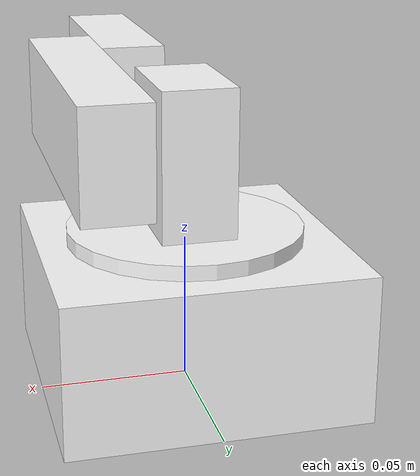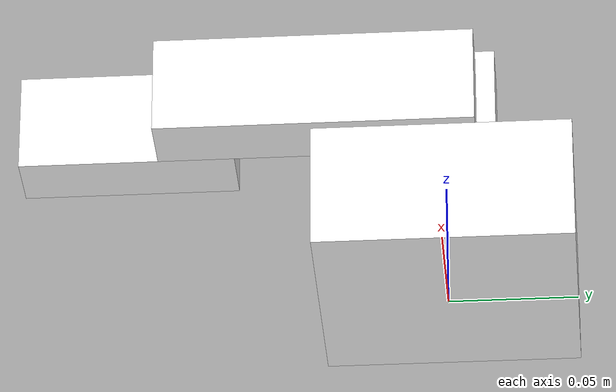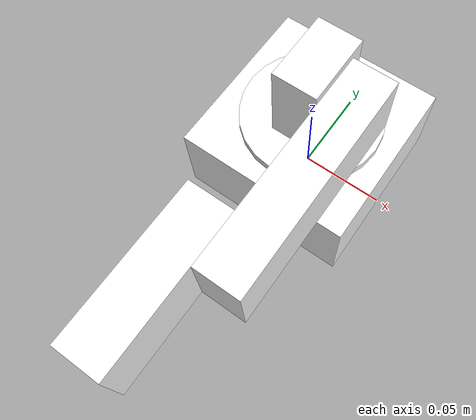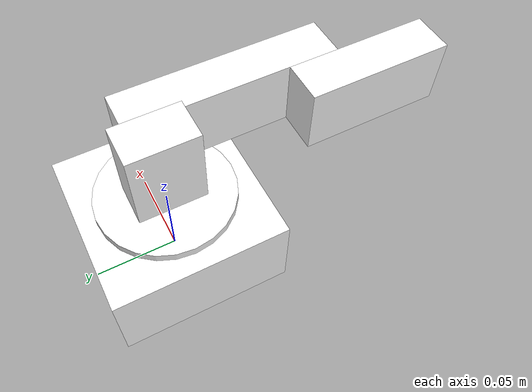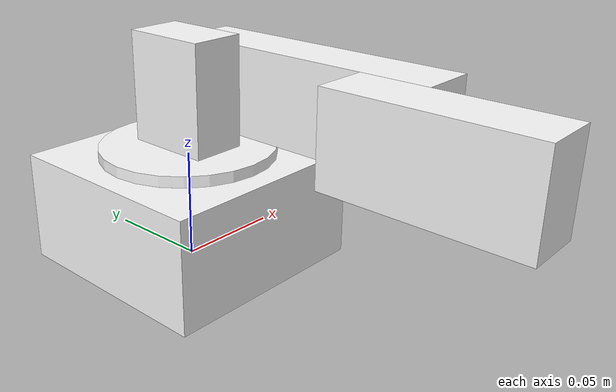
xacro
<?xml version="1.0"?>
<robot xmlns:xacro="http://www.ros.org/wiki/xacro" name="robot">

    <xacro:include filename="include.xacro" />

    <link name="world" />

    <link name="base_link">
        <visual>
            <origin rpy="0 0 0" xyz="0 0 0.025" />
            <geometry>
                <box size="0.1 0.1 0.05" />
            </geometry>
            <material name="white" />
        </visual>
        <collision>
            <origin rpy="0 0 0" xyz="0 0 0.025" />
            <geometry>
                <box size="0.1 0.1 0.05" />
            </geometry>
        </collision>
        <xacro:inertial_box mass="0.5" x="0.1" y="0.1" z="0.05">
            <origin rpy="0 0 0" xyz="0 0 0" />
        </xacro:inertial_box>
    </link>

    <joint name="base_joint" type="fixed">
        <origin xyz="0 0 0" rpy="0 0 0" />
        <parent link="world" />
        <child link="base_link" />
    </joint>

    <link name="base_plate">
        <visual>
            <geometry>
                <cylinder radius="0.04" length="0.005" />
            </geometry>
            <origin rpy="0 0 0" xyz="0 0 0.0025" />
            <material name="white" />
        </visual>
        <collision>
            <geometry>
                <cylinder radius="0.04" length="0.005" />
            </geometry>
            <origin rpy="0 0 0" xyz="0 0 0.0025" />
        </collision>
        <xacro:inertial_cylinder mass="0.5" length="0.005" radius="0.04">
            <origin rpy="0 0 0" xyz="0 0 0" />
        </xacro:inertial_cylinder>
    </link>

    <joint name="base_plate_to_base_link" type="revolute">
        <axis xyz="0 0 1" />
        <limit effort="1000" lower="0" upper="3.1415" velocity="1" />
        <origin xyz="0 0 0.05" />
        <parent link="base_link" />
        <child link="base_plate" />
    </joint>

    <link name="base_plate_attachment">
        <visual>
            <geometry>
                <box size="0.025 0.04 0.05" />
            </geometry>
            <origin rpy="0 0 0" xyz="0 0 0.025" />
            <material name="white" />
        </visual>
        <collision>
            <geometry>
                <box size="0.025 0.04 0.05" />
            </geometry>
            <origin rpy="0 0 0" xyz="0 0 0.025" />
        </collision>
        <xacro:inertial_box mass="0.5" x="0.025" y="0.04" z="0.05">
            <origin rpy="0 0 0" xyz="0 0 0" />
        </xacro:inertial_box>
    </link>

    <joint name="base_plate_to_attachment" type="fixed">
        <origin xyz="0 0 0.005" />
        <parent link="base_plate" />
        <child link="base_plate_attachment" />
    </joint>

    <link name="mid_arm">
        <visual>
            <geometry>
                <box size="0.025 0.04 0.125" />
            </geometry>
            <origin rpy="-1.5707963 0 0" xyz="0 -0.05 0" />
            <material name="white" />
        </visual>
        <collision>
            <geometry>
                <box size="0.025 0.04 0.125" />
            </geometry>
            <origin rpy="-1.5707963 0 0" xyz="0 -0.05 0" />
        </collision>
        <xacro:inertial_box mass="0.5" x="0.025" y="0.04" z="0.125">
            <origin rpy="0 0 0" xyz="0 0 0" />
        </xacro:inertial_box>
    </link>

    <joint name="mid_arm_to_attachment" type="revolute">
        <axis xyz="-1 0 0" />
        <limit effort="1000" lower="0" upper="3.1415" velocity="1" />
        <origin xyz="0.025 0 0.025" />
        <parent link="base_plate_attachment" />
        <child link="mid_arm" />
    </joint>

    <link name="top_arm">
        <visual>
            <geometry>
                <box size="0.025 0.04 0.085" />
            </geometry>
            <origin rpy="-1.5707963 0 0" xyz="0 -0.025 0" />
            <material name="white" />
        </visual>
        <collision>
            <geometry>
                <box size="0.025 0.04 0.085" />
            </geometry>
            <origin rpy="-1.5707963 0 0" xyz="0 -0.025 0" />
        </collision>
        <xacro:inertial_box mass="0.5" x="0.025" y="0.04" z="0.085">
            <origin rpy="0 0 0" xyz="0 0 0" />
        </xacro:inertial_box>
    </link>

    <joint name="top_arm_to_mid_arm" type="revolute">
        <axis xyz="-1 0 0" />
        <limit effort="1000" lower="0" upper="3.1415" velocity="1" />
        <origin xyz="-0.025 -0.1 0" />
        <parent link="mid_arm" />
        <child link="top_arm" />
    </joint>

    <gazebo>
        <plugin name="gazebo_ros_joint_state_publisher"
            filename="libgazebo_ros_joint_state_publisher.so">
            <update_rate>30</update_rate>
            <joint_name>base_plate_to_base_link</joint_name>
            <joint_name>mid_arm_to_attachment</joint_name>
            <joint_name>top_arm_to_mid_arm</joint_name>
        </plugin>
    </gazebo>

</robot>

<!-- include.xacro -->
<robot xmlns:xacro="http://www.ros.org/wiki/xacro">

    <!-- This file is not a robot in and of itself, it just contains some useful tags that could be
    included in any robot -->

    <!-- Specify some colours -->

    <material name="white">
        <color rgba="1 1 1 1" />
    </material>

    <!-- Specify some standard inertial calculations
    https://en.wikipedia.org/wiki/List_of_moments_of_inertia -->
    <!-- These make use of xacro's mathematical functionality -->

    <xacro:macro name="inertial_sphere" params="mass radius *origin">
        <inertial>
            <xacro:insert_block name="origin" />
            <mass value="${mass}" />
            <inertia ixx="${(2/5) * mass * (radius*radius)}" ixy="0.0" ixz="0.0"
                iyy="${(2/5) * mass * (radius*radius)}" iyz="0.0"
                izz="${(2/5) * mass * (radius*radius)}" />
        </inertial>
    </xacro:macro>

    <xacro:macro name="inertial_box" params="mass x y z *origin">
        <inertial>
            <xacro:insert_block name="origin" />
            <mass value="${mass}" />
            <inertia ixx="${(1/12) * mass * (y*y+z*z)}" ixy="0.0" ixz="0.0"
                iyy="${(1/12) * mass * (x*x+z*z)}" iyz="0.0"
                izz="${(1/12) * mass * (x*x+y*y)}" />
        </inertial>
    </xacro:macro>

    <xacro:macro name="inertial_cylinder" params="mass length radius *origin">
        <inertial>
            <xacro:insert_block name="origin" />
            <mass value="${mass}" />
            <inertia ixx="${(1/12) * mass * (3*radius*radius + length*length)}" ixy="0.0" ixz="0.0"
                iyy="${(1/12) * mass * (3*radius*radius + length*length)}" iyz="0.0"
                izz="${(1/2) * mass * (radius*radius)}" />
        </inertial>
    </xacro:macro>

</robot>
